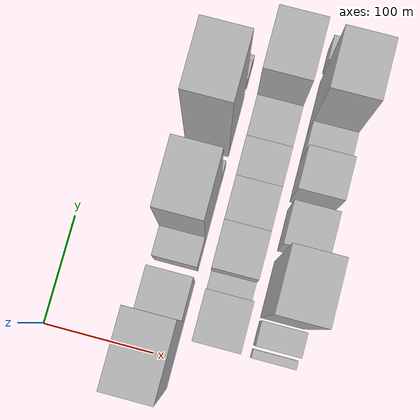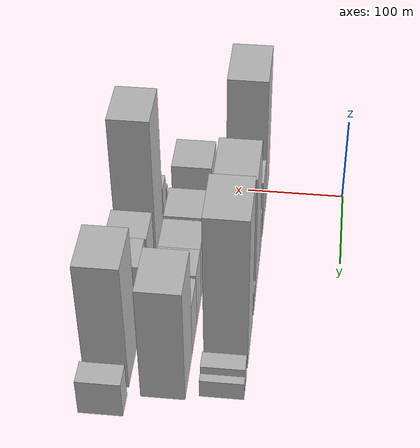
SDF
<sdf version="1.6">
 <world name="default">
  <model name="building_18">
   <static>1</static>
   <pose>100.0000 3.3115 0 0.000000 0.000000 0.000000</pose>
   <link name="link">
    <pose>0 0 84.00 0 0 0</pose>
    <collision name="collision"><geometry><box><size>40.0000 60.3289 168.0000</size></box></geometry></collision>
    <visual name="visual">
     <cast_shadows>0</cast_shadows>
     <geometry><box><size>40.0000 60.3289 168.0000</size></box></geometry>
     <material>
      <script>
       <uri>model://HANNAS_wall/materials/scripts</uri>
       <uri>model://HANNAS_wall/materials/textures</uri>
       <name>vrc/HANNAS_wall</name>
      </script>
     </material>
    </visual>
   </link>
  </model>
  <model name="building_19">
   <static>1</static>
   <pose>100.0000 51.5704 0 0.000000 0.000000 0.000000</pose>
   <link name="link">
    <pose>0 0 36.00 0 0 0</pose>
    <collision name="collision"><geometry><box><size>40.0000 36.1889 72.0000</size></box></geometry></collision>
    <visual name="visual">
     <cast_shadows>0</cast_shadows>
     <geometry><box><size>40.0000 36.1889 72.0000</size></box></geometry>
     <material>
      <script>
       <uri>model://HANNAS_wall/materials/scripts</uri>
       <uri>model://HANNAS_wall/materials/textures</uri>
       <name>vrc/HANNAS_wall</name>
      </script>
     </material>
    </visual>
   </link>
  </model>
  <model name="building_20">
   <static>1</static>
   <pose>100.0000 92.7164 0 0.000000 0.000000 0.000000</pose>
   <link name="link">
    <pose>0 0 24.00 0 0 0</pose>
    <collision name="collision"><geometry><box><size>40.0000 26.1032 48.0000</size></box></geometry></collision>
    <visual name="visual">
     <cast_shadows>0</cast_shadows>
     <geometry><box><size>40.0000 26.1032 48.0000</size></box></geometry>
     <material>
      <script>
       <uri>model://HANNAS_wall/materials/scripts</uri>
       <uri>model://HANNAS_wall/materials/textures</uri>
       <name>vrc/HANNAS_wall</name>
      </script>
     </material>
    </visual>
   </link>
  </model>
  <model name="building_21">
   <static>1</static>
   <pose>100.0000 133.3653 0 0.000000 0.000000 0.000000</pose>
   <link name="link">
    <pose>0 0 78.00 0 0 0</pose>
    <collision name="collision"><geometry><box><size>40.0000 55.1945 156.0000</size></box></geometry></collision>
    <visual name="visual">
     <cast_shadows>0</cast_shadows>
     <geometry><box><size>40.0000 55.1945 156.0000</size></box></geometry>
     <material>
      <script>
       <uri>model://HANNAS_wall/materials/scripts</uri>
       <uri>model://HANNAS_wall/materials/textures</uri>
       <name>vrc/HANNAS_wall</name>
      </script>
     </material>
    </visual>
   </link>
  </model>
  <model name="building_22">
   <static>1</static>
   <pose>100.0000 169.1781 0 0.000000 0.000000 0.000000</pose>
   <link name="link">
    <pose>0 0 15.00 0 0 0</pose>
    <collision name="collision"><geometry><box><size>40.0000 16.4310 30.0000</size></box></geometry></collision>
    <visual name="visual">
     <cast_shadows>0</cast_shadows>
     <geometry><box><size>40.0000 16.4310 30.0000</size></box></geometry>
     <material>
      <script>
       <uri>model://HANNAS_wall/materials/scripts</uri>
       <uri>model://HANNAS_wall/materials/textures</uri>
       <name>vrc/HANNAS_wall</name>
      </script>
     </material>
    </visual>
   </link>
  </model>
  <model name="building_23">
   <static>1</static>
   <pose>100.0000 215.2913 0 0.000000 0.000000 0.000000</pose>
   <link name="link">
    <pose>0 0 91.50 0 0 0</pose>
    <collision name="collision"><geometry><box><size>40.0000 55.7954 183.0000</size></box></geometry></collision>
    <visual name="visual">
     <cast_shadows>0</cast_shadows>
     <geometry><box><size>40.0000 55.7954 183.0000</size></box></geometry>
     <material>
      <script>
       <uri>model://HANNAS_wall/materials/scripts</uri>
       <uri>model://HANNAS_wall/materials/textures</uri>
       <name>vrc/HANNAS_wall</name>
      </script>
     </material>
    </visual>
   </link>
  </model>
  <model name="building_24">
   <static>1</static>
   <pose>100.0000 261.9377 0 0.000000 0.000000 0.000000</pose>
   <link name="link">
    <pose>0 0 15.00 0 0 0</pose>
    <collision name="collision"><geometry><box><size>40.0000 17.4974 30.0000</size></box></geometry></collision>
    <visual name="visual">
     <cast_shadows>0</cast_shadows>
     <geometry><box><size>40.0000 17.4974 30.0000</size></box></geometry>
     <material>
      <script>
       <uri>model://HANNAS_wall/materials/scripts</uri>
       <uri>model://HANNAS_wall/materials/textures</uri>
       <name>vrc/HANNAS_wall</name>
      </script>
     </material>
    </visual>
   </link>
  </model>
  <model name="building_25">
   <static>1</static>
   <pose>100.0000 275.0510 0 0.000000 0.000000 0.000000</pose>
   <link name="link">
    <pose>0 0 10.50 0 0 0</pose>
    <collision name="collision"><geometry><box><size>40.0000 8.7292 21.0000</size></box></geometry></collision>
    <visual name="visual">
     <cast_shadows>0</cast_shadows>
     <geometry><box><size>40.0000 8.7292 21.0000</size></box></geometry>
     <material>
      <script>
       <uri>model://HANNAS_wall/materials/scripts</uri>
       <uri>model://HANNAS_wall/materials/textures</uri>
       <name>vrc/HANNAS_wall</name>
      </script>
     </material>
    </visual>
   </link>
  </model>
  <model name="building_49">
   <static>1</static>
   <pose>152.0000 41.7563 0 0.000000 0.000000 0.000000</pose>
   <link name="link">
    <pose>0 0 40.50 0 0 0</pose>
    <collision name="collision"><geometry><box><size>40.0000 42.6824 81.0000</size></box></geometry></collision>
    <visual name="visual">
     <cast_shadows>0</cast_shadows>
     <geometry><box><size>40.0000 42.6824 81.0000</size></box></geometry>
     <material>
      <script>
       <uri>model://HANNAS_wall/materials/scripts</uri>
       <uri>model://HANNAS_wall/materials/textures</uri>
       <name>vrc/HANNAS_wall</name>
      </script>
     </material>
    </visual>
   </link>
  </model>
  <model name="building_50">
   <static>1</static>
   <pose>152.0000 72.0934 0 0.000000 0.000000 0.000000</pose>
   <link name="link">
    <pose>0 0 16.50 0 0 0</pose>
    <collision name="collision"><geometry><box><size>40.0000 17.9917 33.0000</size></box></geometry></collision>
    <visual name="visual">
     <cast_shadows>0</cast_shadows>
     <geometry><box><size>40.0000 17.9917 33.0000</size></box></geometry>
     <material>
      <script>
       <uri>model://HANNAS_wall/materials/scripts</uri>
       <uri>model://HANNAS_wall/materials/textures</uri>
       <name>vrc/HANNAS_wall</name>
      </script>
     </material>
    </visual>
   </link>
  </model>
  <model name="building_51">
   <static>1</static>
   <pose>152.0000 101.7214 0 0.000000 0.000000 0.000000</pose>
   <link name="link">
    <pose>0 0 34.50 0 0 0</pose>
    <collision name="collision"><geometry><box><size>40.0000 41.2645 69.0000</size></box></geometry></collision>
    <visual name="visual">
     <cast_shadows>0</cast_shadows>
     <geometry><box><size>40.0000 41.2645 69.0000</size></box></geometry>
     <material>
      <script>
       <uri>model://HANNAS_wall/materials/scripts</uri>
       <uri>model://HANNAS_wall/materials/textures</uri>
       <name>vrc/HANNAS_wall</name>
      </script>
     </material>
    </visual>
   </link>
  </model>
  <model name="building_52">
   <static>1</static>
   <pose>152.0000 141.6499 0 0.000000 0.000000 0.000000</pose>
   <link name="link">
    <pose>0 0 33.00 0 0 0</pose>
    <collision name="collision"><geometry><box><size>40.0000 38.5925 66.0000</size></box></geometry></collision>
    <visual name="visual">
     <cast_shadows>0</cast_shadows>
     <geometry><box><size>40.0000 38.5925 66.0000</size></box></geometry>
     <material>
      <script>
       <uri>model://HANNAS_wall/materials/scripts</uri>
       <uri>model://HANNAS_wall/materials/textures</uri>
       <name>vrc/HANNAS_wall</name>
      </script>
     </material>
    </visual>
   </link>
  </model>
  <model name="building_53">
   <static>1</static>
   <pose>152.0000 178.3132 0 0.000000 0.000000 0.000000</pose>
   <link name="link">
    <pose>0 0 33.00 0 0 0</pose>
    <collision name="collision"><geometry><box><size>40.0000 34.7341 66.0000</size></box></geometry></collision>
    <visual name="visual">
     <cast_shadows>0</cast_shadows>
     <geometry><box><size>40.0000 34.7341 66.0000</size></box></geometry>
     <material>
      <script>
       <uri>model://HANNAS_wall/materials/scripts</uri>
       <uri>model://HANNAS_wall/materials/textures</uri>
       <name>vrc/HANNAS_wall</name>
      </script>
     </material>
    </visual>
   </link>
  </model>
  <model name="building_54">
   <static>1</static>
   <pose>152.0000 214.1476 0 0.000000 0.000000 0.000000</pose>
   <link name="link">
    <pose>0 0 31.50 0 0 0</pose>
    <collision name="collision"><geometry><box><size>40.0000 36.9346 63.0000</size></box></geometry></collision>
    <visual name="visual">
     <cast_shadows>0</cast_shadows>
     <geometry><box><size>40.0000 36.9346 63.0000</size></box></geometry>
     <material>
      <script>
       <uri>model://HANNAS_wall/materials/scripts</uri>
       <uri>model://HANNAS_wall/materials/textures</uri>
       <name>vrc/HANNAS_wall</name>
      </script>
     </material>
    </visual>
   </link>
  </model>
  <model name="building_55">
   <static>1</static>
   <pose>152.0000 258.7422 0 0.000000 0.000000 0.000000</pose>
   <link name="link">
    <pose>0 0 67.50 0 0 0</pose>
    <collision name="collision"><geometry><box><size>40.0000 52.2546 135.0000</size></box></geometry></collision>
    <visual name="visual">
     <cast_shadows>0</cast_shadows>
     <geometry><box><size>40.0000 52.2546 135.0000</size></box></geometry>
     <material>
      <script>
       <uri>model://HANNAS_wall/materials/scripts</uri>
       <uri>model://HANNAS_wall/materials/textures</uri>
       <name>vrc/HANNAS_wall</name>
      </script>
     </material>
    </visual>
   </link>
  </model>
  <model name="building_79">
   <static>1</static>
   <pose>204.0000 22.2467 0 0.000000 0.000000 0.000000</pose>
   <link name="link">
    <pose>0 0 9.00 0 0 0</pose>
    <collision name="collision"><geometry><box><size>40.0000 7.8836 18.0000</size></box></geometry></collision>
    <visual name="visual">
     <cast_shadows>0</cast_shadows>
     <geometry><box><size>40.0000 7.8836 18.0000</size></box></geometry>
     <material>
      <script>
       <uri>model://HANNAS_wall/materials/scripts</uri>
       <uri>model://HANNAS_wall/materials/textures</uri>
       <name>vrc/HANNAS_wall</name>
      </script>
     </material>
    </visual>
   </link>
  </model>
  <model name="building_80">
   <static>1</static>
   <pose>204.0000 40.1122 0 0.000000 0.000000 0.000000</pose>
   <link name="link">
    <pose>0 0 19.50 0 0 0</pose>
    <collision name="collision"><geometry><box><size>40.0000 21.8474 39.0000</size></box></geometry></collision>
    <visual name="visual">
     <cast_shadows>0</cast_shadows>
     <geometry><box><size>40.0000 21.8474 39.0000</size></box></geometry>
     <material>
      <script>
       <uri>model://HANNAS_wall/materials/scripts</uri>
       <uri>model://HANNAS_wall/materials/textures</uri>
       <name>vrc/HANNAS_wall</name>
      </script>
     </material>
    </visual>
   </link>
  </model>
  <model name="building_81">
   <static>1</static>
   <pose>204.0000 79.6915 0 0.000000 0.000000 0.000000</pose>
   <link name="link">
    <pose>0 0 84.00 0 0 0</pose>
    <collision name="collision"><geometry><box><size>40.0000 51.3113 168.0000</size></box></geometry></collision>
    <visual name="visual">
     <cast_shadows>0</cast_shadows>
     <geometry><box><size>40.0000 51.3113 168.0000</size></box></geometry>
     <material>
      <script>
       <uri>model://HANNAS_wall/materials/scripts</uri>
       <uri>model://HANNAS_wall/materials/textures</uri>
       <name>vrc/HANNAS_wall</name>
      </script>
     </material>
    </visual>
   </link>
  </model>
  <model name="building_82">
   <static>1</static>
   <pose>204.0000 134.2931 0 0.000000 0.000000 0.000000</pose>
   <link name="link">
    <pose>0 0 33.00 0 0 0</pose>
    <collision name="collision"><geometry><box><size>40.0000 37.8919 66.0000</size></box></geometry></collision>
    <visual name="visual">
     <cast_shadows>0</cast_shadows>
     <geometry><box><size>40.0000 37.8919 66.0000</size></box></geometry>
     <material>
      <script>
       <uri>model://HANNAS_wall/materials/scripts</uri>
       <uri>model://HANNAS_wall/materials/textures</uri>
       <name>vrc/HANNAS_wall</name>
      </script>
     </material>
    </visual>
   </link>
  </model>
  <model name="building_83">
   <static>1</static>
   <pose>204.0000 180.1145 0 0.000000 0.000000 0.000000</pose>
   <link name="link">
    <pose>0 0 37.50 0 0 0</pose>
    <collision name="collision"><geometry><box><size>40.0000 37.7509 75.0000</size></box></geometry></collision>
    <visual name="visual">
     <cast_shadows>0</cast_shadows>
     <geometry><box><size>40.0000 37.7509 75.0000</size></box></geometry>
     <material>
      <script>
       <uri>model://HANNAS_wall/materials/scripts</uri>
       <uri>model://HANNAS_wall/materials/textures</uri>
       <name>vrc/HANNAS_wall</name>
      </script>
     </material>
    </visual>
   </link>
  </model>
  <model name="building_84">
   <static>1</static>
   <pose>204.0000 212.4514 0 0.000000 0.000000 0.000000</pose>
   <link name="link">
    <pose>0 0 25.50 0 0 0</pose>
    <collision name="collision"><geometry><box><size>40.0000 26.9230 51.0000</size></box></geometry></collision>
    <visual name="visual">
     <cast_shadows>0</cast_shadows>
     <geometry><box><size>40.0000 26.9230 51.0000</size></box></geometry>
     <material>
      <script>
       <uri>model://HANNAS_wall/materials/scripts</uri>
       <uri>model://HANNAS_wall/materials/textures</uri>
       <name>vrc/HANNAS_wall</name>
      </script>
     </material>
    </visual>
   </link>
  </model>
  <model name="building_85">
   <static>1</static>
   <pose>204.0000 251.0109 0 0.000000 0.000000 0.000000</pose>
   <link name="link">
    <pose>0 0 75.00 0 0 0</pose>
    <collision name="collision"><geometry><box><size>40.0000 50.1960 150.0000</size></box></geometry></collision>
    <visual name="visual">
     <cast_shadows>0</cast_shadows>
     <geometry><box><size>40.0000 50.1960 150.0000</size></box></geometry>
     <material>
      <script>
       <uri>model://HANNAS_wall/materials/scripts</uri>
       <uri>model://HANNAS_wall/materials/textures</uri>
       <name>vrc/HANNAS_wall</name>
      </script>
     </material>
    </visual>
   </link>
  </model>
  <model name="building_86">
   <static>1</static>
   <pose>204.0000 296.6893 0 0.000000 0.000000 0.000000</pose>
   <link name="link">
    <pose>0 0 21.00 0 0 0</pose>
    <collision name="collision"><geometry><box><size>40.0000 23.1609 42.0000</size></box></geometry></collision>
    <visual name="visual">
     <cast_shadows>0</cast_shadows>
     <geometry><box><size>40.0000 23.1609 42.0000</size></box></geometry>
     <material>
      <script>
       <uri>model://HANNAS_wall/materials/scripts</uri>
       <uri>model://HANNAS_wall/materials/textures</uri>
       <name>vrc/HANNAS_wall</name>
      </script>
     </material>
    </visual>
   </link>
  </model>
 </world>
</sdf>
